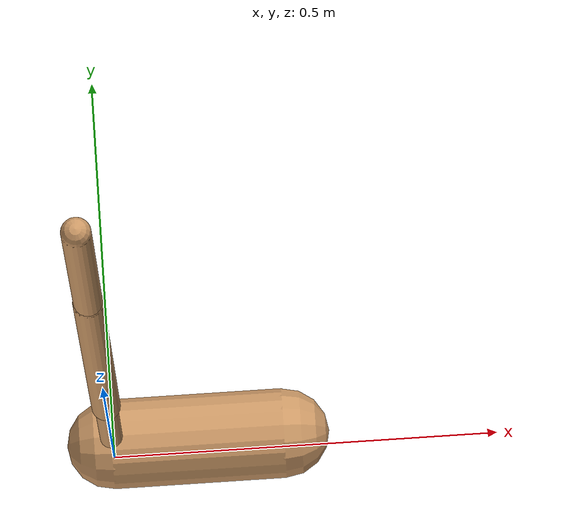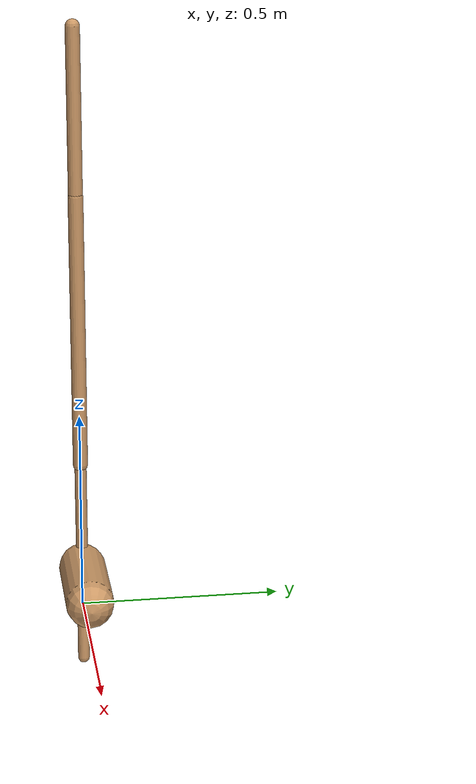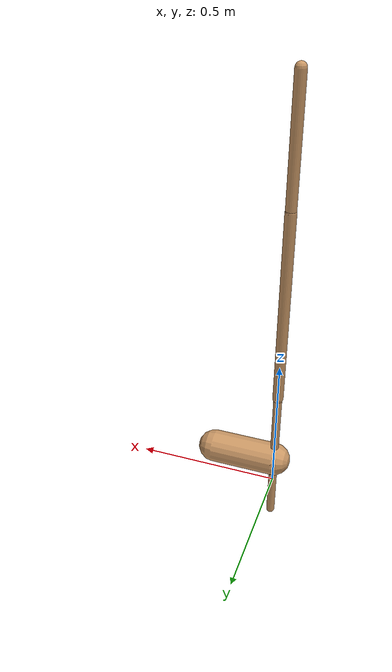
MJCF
<mujoco model="walker2d">
  <compiler angle="degree" coordinate="global" inertiafromgeom="true" />
  <default>
    <joint armature="0.01" damping=".1" limited="true" />
    <geom conaffinity="0" condim="3" contype="1" density="1000" friction="0.8 .1 .1" rgba="0.8 0.6 .4 1" />
  </default>
  <option integrator="RK4" timestep="0.002" />
  <worldbody>

    <body name="torso" pos="0 0 0.47449883010143745">
      <joint armature="0" axis="1 0 0" damping="0" limited="false" name="ignorex" pos="0 0 0" stiffness="0" type="slide" />
      <joint armature="0" axis="0 0 1" damping="0" limited="false" name="ignorez" pos="0 0 0" ref="1.25" stiffness="0" type="slide" />
      <joint armature="0" axis="0 1 0" damping="0" limited="false" name="ignorey" pos="0 0 0" stiffness="0" type="hinge" />
      <geom fromto="0 0 1.45 0 0 1.05" name="torso_geom" size="0.017245112842914124" type="capsule" />
      <body name="thigh">
        <joint axis="0 -1 0" name="thigh_joint" pos="0 0 1.05" range="-150 0" type="hinge" />
        <geom fromto="0.0 0.0 1.05 0.0 0.0 0.3752373962677401" name="thigh_geom" size="0.01824487112770843" type="capsule" />
        <body name="leg" pos="0.0 0.0 -0.22476260373225987">
          <joint axis="0 -1 0" name="leg_joint" pos="0 0 0.6" range="-150 0" type="hinge" />
          <geom fromto="0.0 0.0 0.6 0.0 0.0 -0.14973622636917758" name="leg_geom" size="0.014595896902166743" type="capsule" />
          <body name="foot" pos="0.0 0.0 -0.24973622636917758">
            <joint axis="0 -1 0" name="foot_joint" pos="0 0 0.1" range="-45 45" type="hinge" />
            <geom fromto="-0.0 0.0 0.1 0.22180087480006938 0.0 0.1" name="foot_geom" size="0.05827012463489751" type="capsule" />
          </body>
        </body>
      </body>

      <body name="thigh_left">
        <joint axis="0 -1 0" name="thigh_left_joint" pos="0 0 1.05" range="-150 0" type="hinge" />
        <geom fromto="0.0 0.0 1.05 0.0 0.0 0.3752373962677401" name="thigh_left_geom" rgba=".7 .3 .6 1" size="0.01824487112770843" type="capsule" />
        <body name="leg_left" pos="0.0 0.0 -0.22476260373225987">
          <joint axis="0 -1 0" name="leg_left_joint" pos="0 0 0.6" range="-150 0" type="hinge" />
          <geom fromto="0.0 0.0 0.6 0.0 0.0 -0.14973622636917758" name="leg_left_geom" rgba=".7 .3 .6 1" size="0.014595896902166743" type="capsule" />
          <body name="foot_left" pos="0.0 0.0 -0.24973622636917758">
            <joint axis="0 -1 0" name="foot_left_joint" pos="0 0 0.1" range="-45 45" type="hinge" />
            <geom fromto="-0.0 0.0 0.1 0.22180087480006938 0.0 0.1" name="foot_left_geom" rgba=".7 .3 .6 1" size="0.05827012463489751" type="capsule" />
          </body>
        </body>
      </body>
    </body>
  </worldbody>
  <actuator>

    <motor ctrllimited="true" ctrlrange="-1.0 1.0" gear="100" joint="thigh_joint" />
    <motor ctrllimited="true" ctrlrange="-1.0 1.0" gear="100" joint="leg_joint" />
    <motor ctrllimited="true" ctrlrange="-1.0 1.0" gear="100" joint="foot_joint" />
    <motor ctrllimited="true" ctrlrange="-1.0 1.0" gear="100" joint="thigh_left_joint" />
    <motor ctrllimited="true" ctrlrange="-1.0 1.0" gear="100" joint="leg_left_joint" />
    <motor ctrllimited="true" ctrlrange="-1.0 1.0" gear="100" joint="foot_left_joint" />

  </actuator>
</mujoco>
